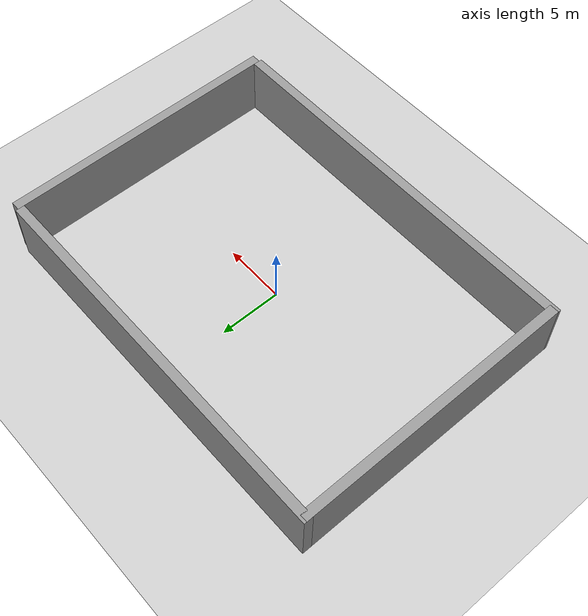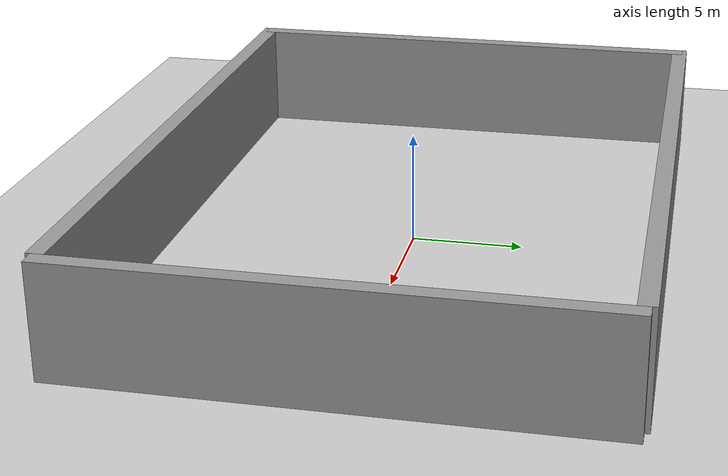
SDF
<sdf version="1.7">
  <world name="default">
    <model name="Workshop">
      <link name="wall_left">
        <collision name="wall_left_Collision">
          <geometry>
            <box>
              <size>31.299999999999997 0.75 5.0</size>
            </box>
          </geometry>
          <pose>0.0 0.0 2.5 0.0 -0.0 0.0</pose>
          <max_contacts>10</max_contacts>
          <surface>
            <contact>
              <ode/>
            </contact>
            <bounce/>
            <friction>
              <torsional>
                <ode/>
              </torsional>
              <ode/>
            </friction>
          </surface>
        </collision>
        <visual name="wall_left_Visual">
          <pose>0.0 0.0 2.5 0.0 -0.0 0.0</pose>
          <geometry>
            <box>
              <size>31.299999999999997 0.75 5.0</size>
            </box>
          </geometry>
          <material>
            <script>
              <uri>file://media/materials/scripts/gazebo.material</uri>
              <name>Gazebo/Grey</name>
            </script>
            <ambient>0 0 0 1</ambient>
          </material>
        </visual>
        <pose>-0.3725 11.2428 0.0 0.0 0.0 0.0</pose>
        <self_collide>0</self_collide>
        <enable_wind>0</enable_wind>
        <kinematic>0</kinematic>
      </link>
      <static>1</static>
      <pose>0 0 0 0 0 0</pose>
    <link name="wall_right">
        <collision name="wall_right_Collision">
          <geometry>
            <box>
              <size>31.3 0.75 5.0</size>
            </box>
          </geometry>
          <pose>0.0 0.0 2.5 0.0 -0.0 0.0</pose>
          <max_contacts>10</max_contacts>
          <surface>
            <contact>
              <ode/>
            </contact>
            <bounce/>
            <friction>
              <torsional>
                <ode/>
              </torsional>
              <ode/>
            </friction>
          </surface>
        </collision>
        <visual name="wall_right_Visual">
          <pose>0.0 0.0 2.5 0.0 -0.0 0.0</pose>
          <geometry>
            <box>
              <size>31.3 0.75 5.0</size>
            </box>
          </geometry>
          <material>
            <script>
              <uri>file://media/materials/scripts/gazebo.material</uri>
              <name>Gazebo/Grey</name>
            </script>
            <ambient>0 0 0 1</ambient>
          </material>
        </visual>
        <pose>-0.3725 -11.2428 0.0 0.0 0.0 0.0</pose>
        <self_collide>0</self_collide>
        <enable_wind>0</enable_wind>
        <kinematic>0</kinematic>
      </link><link name="wall_top">
        <collision name="wall_top_Collision">
          <geometry>
            <box>
              <size>22.8 0.75 5.0</size>
            </box>
          </geometry>
          <pose>0.0 0.0 2.5 0.0 -0.0 0.0</pose>
          <max_contacts>10</max_contacts>
          <surface>
            <contact>
              <ode/>
            </contact>
            <bounce/>
            <friction>
              <torsional>
                <ode/>
              </torsional>
              <ode/>
            </friction>
          </surface>
        </collision>
        <visual name="wall_top_Visual">
          <pose>0.0 0.0 2.5 0.0 -0.0 0.0</pose>
          <geometry>
            <box>
              <size>22.8 0.75 5.0</size>
            </box>
          </geometry>
          <material>
            <script>
              <uri>file://media/materials/scripts/gazebo.material</uri>
              <name>Gazebo/Grey</name>
            </script>
            <ambient>0 0 0 1</ambient>
          </material>
        </visual>
        <pose>15.6475 0.0 0.0 0.0 0.0 -1.5708</pose>
        <self_collide>0</self_collide>
        <enable_wind>0</enable_wind>
        <kinematic>0</kinematic>
      </link><link name="wall_bottom">
        <collision name="wall_bottom_Collision">
          <geometry>
            <box>
              <size>22.8 0.75 5.0</size>
            </box>
          </geometry>
          <pose>0.0 0.0 2.5 0.0 -0.0 0.0</pose>
          <max_contacts>10</max_contacts>
          <surface>
            <contact>
              <ode/>
            </contact>
            <bounce/>
            <friction>
              <torsional>
                <ode/>
              </torsional>
              <ode/>
            </friction>
          </surface>
        </collision>
        <visual name="wall_bottom_Visual">
          <pose>0.0 0.0 2.5 0.0 -0.0 0.0</pose>
          <geometry>
            <box>
              <size>22.8 0.75 5.0</size>
            </box>
          </geometry>
          <material>
            <script>
              <uri>file://media/materials/scripts/gazebo.material</uri>
              <name>Gazebo/Grey</name>
            </script>
            <ambient>0 0 0 1</ambient>
          </material>
        </visual>
        <pose>-15.6475 0.0 0.0 0.0 0.0 -1.5708</pose>
        <self_collide>0</self_collide>
        <enable_wind>0</enable_wind>
        <kinematic>0</kinematic>
      </link></model>
    <model name="ground_plane">
  <static>1</static>
  <link name="link">
    <collision name="collision">
      <geometry>
        <plane>
          <normal>0 0 1</normal>
          <size>500 500</size>
        </plane>
      </geometry>
      <surface>
        <friction>
          <ode>
            <mu>100</mu>
            <mu2>50</mu2>
          </ode>
          <torsional>
            <ode/>
          </torsional>
        </friction>
        <contact>
          <ode/>
        </contact>
        <bounce/>
      </surface>
      <max_contacts>10</max_contacts>
    </collision>
    <visual name="visual">
      <cast_shadows>0</cast_shadows>
      <geometry>
        <plane>
          <normal>0 0 1</normal>
          <size>500 500</size>
        </plane>
      </geometry>
      <material>
        <script>
          <uri>file://media/materials/scripts/gazebo.material</uri>
          <name>Gazebo/Grey</name>
        </script>
      </material>
    </visual>
    <self_collide>0</self_collide>
    <enable_wind>0</enable_wind>
    <kinematic>0</kinematic>
  </link>
</model><physics type="ode">
  <max_step_size>0.001</max_step_size>
  <real_time_factor>1</real_time_factor>
  <real_time_update_rate>1000</real_time_update_rate>
</physics><gravity>0 0 -9.8</gravity></world>
</sdf>
